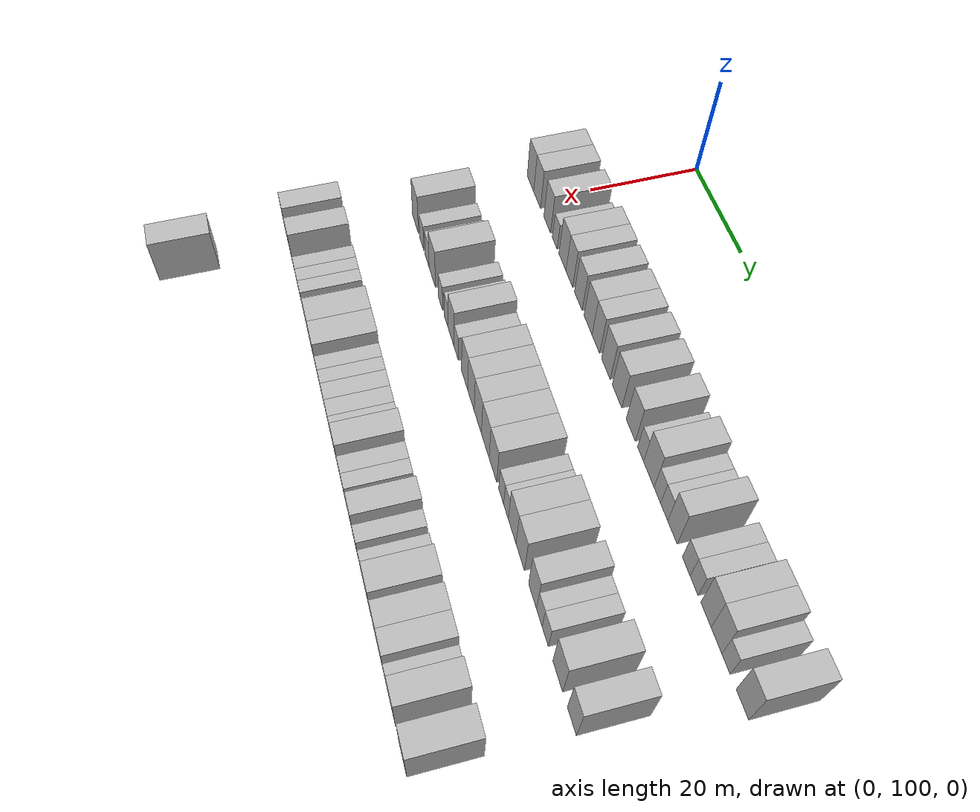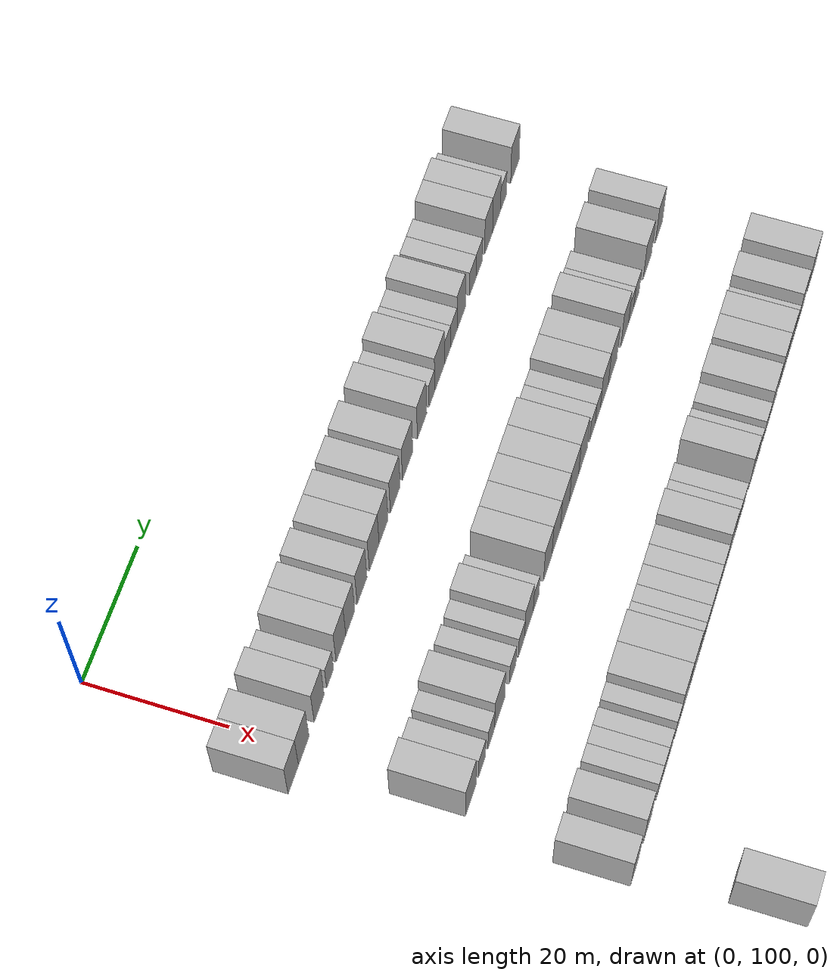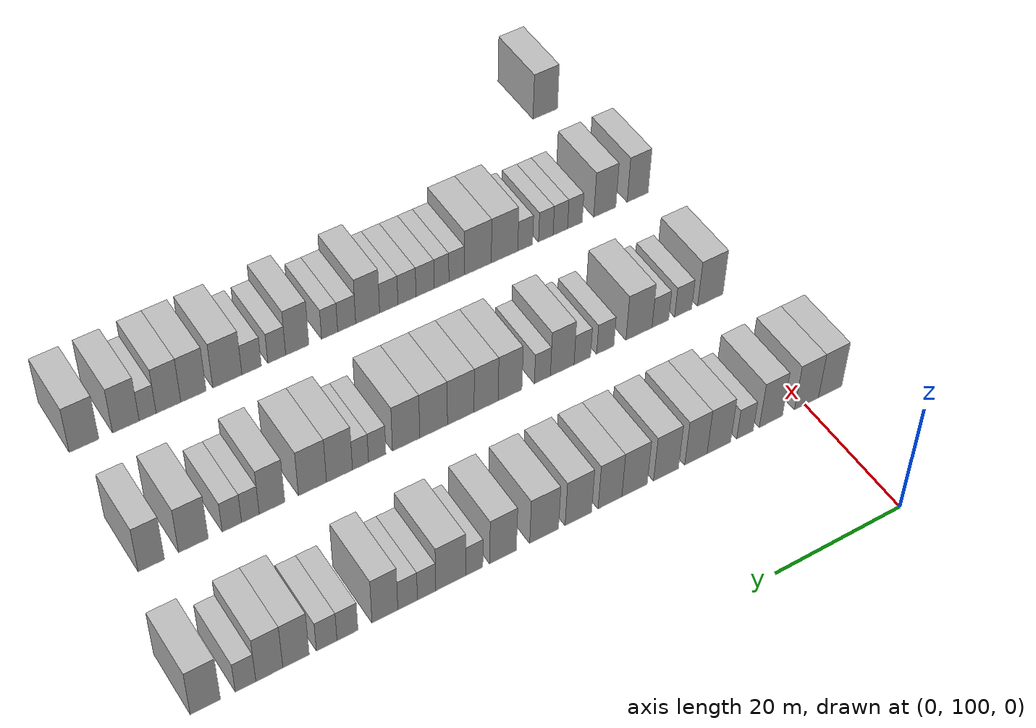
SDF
<sdf version="1.6">
 <world name="default">
  <model name="building_119">
   <static>1</static>
   <pose>25.0000 95.8209 0 0.000000 0.000000 0.000000</pose>
   <link name="link">
    <pose>0 0 4.50 0 0 0</pose>
    <collision name="collision"><geometry><box><size>10.0000 3.9460 9.0000</size></box></geometry></collision>
    <visual name="visual">
     <cast_shadows>0</cast_shadows>
     <geometry><box><size>10.0000 3.9460 9.0000</size></box></geometry>
     <material>
      <script>
       <uri>model://HANNAS_wall/materials/scripts</uri>
       <uri>model://HANNAS_wall/materials/textures</uri>
       <name>vrc/HANNAS_wall</name>
      </script>
     </material>
    </visual>
   </link>
  </model>
  <model name="building_120">
   <static>1</static>
   <pose>25.0000 99.8201 0 0.000000 0.000000 0.000000</pose>
   <link name="link">
    <pose>0 0 4.50 0 0 0</pose>
    <collision name="collision"><geometry><box><size>10.0000 4.0524 9.0000</size></box></geometry></collision>
    <visual name="visual">
     <cast_shadows>0</cast_shadows>
     <geometry><box><size>10.0000 4.0524 9.0000</size></box></geometry>
     <material>
      <script>
       <uri>model://HANNAS_wall/materials/scripts</uri>
       <uri>model://HANNAS_wall/materials/textures</uri>
       <name>vrc/HANNAS_wall</name>
      </script>
     </material>
    </visual>
   </link>
  </model>
  <model name="building_121">
   <static>1</static>
   <pose>25.0000 105.7725 0 0.000000 0.000000 0.000000</pose>
   <link name="link">
    <pose>0 0 4.50 0 0 0</pose>
    <collision name="collision"><geometry><box><size>10.0000 3.8525 9.0000</size></box></geometry></collision>
    <visual name="visual">
     <cast_shadows>0</cast_shadows>
     <geometry><box><size>10.0000 3.8525 9.0000</size></box></geometry>
     <material>
      <script>
       <uri>model://HANNAS_wall/materials/scripts</uri>
       <uri>model://HANNAS_wall/materials/textures</uri>
       <name>vrc/HANNAS_wall</name>
      </script>
     </material>
    </visual>
   </link>
  </model>
  <model name="building_122">
   <static>1</static>
   <pose>25.0000 110.0561 0 0.000000 0.000000 0.000000</pose>
   <link name="link">
    <pose>0 0 3.00 0 0 0</pose>
    <collision name="collision"><geometry><box><size>10.0000 2.7146 6.0000</size></box></geometry></collision>
    <visual name="visual">
     <cast_shadows>0</cast_shadows>
     <geometry><box><size>10.0000 2.7146 6.0000</size></box></geometry>
     <material>
      <script>
       <uri>model://HANNAS_wall/materials/scripts</uri>
       <uri>model://HANNAS_wall/materials/textures</uri>
       <name>vrc/HANNAS_wall</name>
      </script>
     </material>
    </visual>
   </link>
  </model>
  <model name="building_123">
   <static>1</static>
   <pose>25.0000 114.3335 0 0.000000 0.000000 0.000000</pose>
   <link name="link">
    <pose>0 0 4.50 0 0 0</pose>
    <collision name="collision"><geometry><box><size>10.0000 3.8403 9.0000</size></box></geometry></collision>
    <visual name="visual">
     <cast_shadows>0</cast_shadows>
     <geometry><box><size>10.0000 3.8403 9.0000</size></box></geometry>
     <material>
      <script>
       <uri>model://HANNAS_wall/materials/scripts</uri>
       <uri>model://HANNAS_wall/materials/textures</uri>
       <name>vrc/HANNAS_wall</name>
      </script>
     </material>
    </visual>
   </link>
  </model>
  <model name="building_124">
   <static>1</static>
   <pose>25.0000 118.0542 0 0.000000 0.000000 0.000000</pose>
   <link name="link">
    <pose>0 0 4.50 0 0 0</pose>
    <collision name="collision"><geometry><box><size>10.0000 3.6010 9.0000</size></box></geometry></collision>
    <visual name="visual">
     <cast_shadows>0</cast_shadows>
     <geometry><box><size>10.0000 3.6010 9.0000</size></box></geometry>
     <material>
      <script>
       <uri>model://HANNAS_wall/materials/scripts</uri>
       <uri>model://HANNAS_wall/materials/textures</uri>
       <name>vrc/HANNAS_wall</name>
      </script>
     </material>
    </visual>
   </link>
  </model>
  <model name="building_125">
   <static>1</static>
   <pose>25.0000 122.8403 0 0.000000 0.000000 0.000000</pose>
   <link name="link">
    <pose>0 0 4.50 0 0 0</pose>
    <collision name="collision"><geometry><box><size>10.0000 3.9712 9.0000</size></box></geometry></collision>
    <visual name="visual">
     <cast_shadows>0</cast_shadows>
     <geometry><box><size>10.0000 3.9712 9.0000</size></box></geometry>
     <material>
      <script>
       <uri>model://HANNAS_wall/materials/scripts</uri>
       <uri>model://HANNAS_wall/materials/textures</uri>
       <name>vrc/HANNAS_wall</name>
      </script>
     </material>
    </visual>
   </link>
  </model>
  <model name="building_126">
   <static>1</static>
   <pose>25.0000 127.8249 0 0.000000 0.000000 0.000000</pose>
   <link name="link">
    <pose>0 0 4.50 0 0 0</pose>
    <collision name="collision"><geometry><box><size>10.0000 3.9979 9.0000</size></box></geometry></collision>
    <visual name="visual">
     <cast_shadows>0</cast_shadows>
     <geometry><box><size>10.0000 3.9979 9.0000</size></box></geometry>
     <material>
      <script>
       <uri>model://HANNAS_wall/materials/scripts</uri>
       <uri>model://HANNAS_wall/materials/textures</uri>
       <name>vrc/HANNAS_wall</name>
      </script>
     </material>
    </visual>
   </link>
  </model>
  <model name="building_127">
   <static>1</static>
   <pose>25.0000 131.6779 0 0.000000 0.000000 0.000000</pose>
   <link name="link">
    <pose>0 0 4.50 0 0 0</pose>
    <collision name="collision"><geometry><box><size>10.0000 3.7081 9.0000</size></box></geometry></collision>
    <visual name="visual">
     <cast_shadows>0</cast_shadows>
     <geometry><box><size>10.0000 3.7081 9.0000</size></box></geometry>
     <material>
      <script>
       <uri>model://HANNAS_wall/materials/scripts</uri>
       <uri>model://HANNAS_wall/materials/textures</uri>
       <name>vrc/HANNAS_wall</name>
      </script>
     </material>
    </visual>
   </link>
  </model>
  <model name="building_128">
   <static>1</static>
   <pose>25.0000 136.5769 0 0.000000 0.000000 0.000000</pose>
   <link name="link">
    <pose>0 0 4.50 0 0 0</pose>
    <collision name="collision"><geometry><box><size>10.0000 4.0900 9.0000</size></box></geometry></collision>
    <visual name="visual">
     <cast_shadows>0</cast_shadows>
     <geometry><box><size>10.0000 4.0900 9.0000</size></box></geometry>
     <material>
      <script>
       <uri>model://HANNAS_wall/materials/scripts</uri>
       <uri>model://HANNAS_wall/materials/textures</uri>
       <name>vrc/HANNAS_wall</name>
      </script>
     </material>
    </visual>
   </link>
  </model>
  <model name="building_129">
   <static>1</static>
   <pose>25.0000 141.8171 0 0.000000 0.000000 0.000000</pose>
   <link name="link">
    <pose>0 0 4.50 0 0 0</pose>
    <collision name="collision"><geometry><box><size>10.0000 4.3904 9.0000</size></box></geometry></collision>
    <visual name="visual">
     <cast_shadows>0</cast_shadows>
     <geometry><box><size>10.0000 4.3904 9.0000</size></box></geometry>
     <material>
      <script>
       <uri>model://HANNAS_wall/materials/scripts</uri>
       <uri>model://HANNAS_wall/materials/textures</uri>
       <name>vrc/HANNAS_wall</name>
      </script>
     </material>
    </visual>
   </link>
  </model>
  <model name="building_130">
   <static>1</static>
   <pose>25.0000 148.0260 0 0.000000 0.000000 0.000000</pose>
   <link name="link">
    <pose>0 0 4.50 0 0 0</pose>
    <collision name="collision"><geometry><box><size>10.0000 4.0274 9.0000</size></box></geometry></collision>
    <visual name="visual">
     <cast_shadows>0</cast_shadows>
     <geometry><box><size>10.0000 4.0274 9.0000</size></box></geometry>
     <material>
      <script>
       <uri>model://HANNAS_wall/materials/scripts</uri>
       <uri>model://HANNAS_wall/materials/textures</uri>
       <name>vrc/HANNAS_wall</name>
      </script>
     </material>
    </visual>
   </link>
  </model>
  <model name="building_131">
   <static>1</static>
   <pose>25.0000 152.3215 0 0.000000 0.000000 0.000000</pose>
   <link name="link">
    <pose>0 0 3.00 0 0 0</pose>
    <collision name="collision"><geometry><box><size>10.0000 2.5635 6.0000</size></box></geometry></collision>
    <visual name="visual">
     <cast_shadows>0</cast_shadows>
     <geometry><box><size>10.0000 2.5635 6.0000</size></box></geometry>
     <material>
      <script>
       <uri>model://HANNAS_wall/materials/scripts</uri>
       <uri>model://HANNAS_wall/materials/textures</uri>
       <name>vrc/HANNAS_wall</name>
      </script>
     </material>
    </visual>
   </link>
  </model>
  <model name="building_132">
   <static>1</static>
   <pose>25.0000 155.7969 0 0.000000 0.000000 0.000000</pose>
   <link name="link">
    <pose>0 0 4.50 0 0 0</pose>
    <collision name="collision"><geometry><box><size>10.0000 4.3872 9.0000</size></box></geometry></collision>
    <visual name="visual">
     <cast_shadows>0</cast_shadows>
     <geometry><box><size>10.0000 4.3872 9.0000</size></box></geometry>
     <material>
      <script>
       <uri>model://HANNAS_wall/materials/scripts</uri>
       <uri>model://HANNAS_wall/materials/textures</uri>
       <name>vrc/HANNAS_wall</name>
      </script>
     </material>
    </visual>
   </link>
  </model>
  <model name="building_133">
   <static>1</static>
   <pose>25.0000 159.3208 0 0.000000 0.000000 0.000000</pose>
   <link name="link">
    <pose>0 0 3.00 0 0 0</pose>
    <collision name="collision"><geometry><box><size>10.0000 2.6606 6.0000</size></box></geometry></collision>
    <visual name="visual">
     <cast_shadows>0</cast_shadows>
     <geometry><box><size>10.0000 2.6606 6.0000</size></box></geometry>
     <material>
      <script>
       <uri>model://HANNAS_wall/materials/scripts</uri>
       <uri>model://HANNAS_wall/materials/textures</uri>
       <name>vrc/HANNAS_wall</name>
      </script>
     </material>
    </visual>
   </link>
  </model>
  <model name="building_134">
   <static>1</static>
   <pose>25.0000 162.0659 0 0.000000 0.000000 0.000000</pose>
   <link name="link">
    <pose>0 0 3.00 0 0 0</pose>
    <collision name="collision"><geometry><box><size>10.0000 2.8296 6.0000</size></box></geometry></collision>
    <visual name="visual">
     <cast_shadows>0</cast_shadows>
     <geometry><box><size>10.0000 2.8296 6.0000</size></box></geometry>
     <material>
      <script>
       <uri>model://HANNAS_wall/materials/scripts</uri>
       <uri>model://HANNAS_wall/materials/textures</uri>
       <name>vrc/HANNAS_wall</name>
      </script>
     </material>
    </visual>
   </link>
  </model>
  <model name="building_135">
   <static>1</static>
   <pose>25.0000 165.3316 0 0.000000 0.000000 0.000000</pose>
   <link name="link">
    <pose>0 0 4.50 0 0 0</pose>
    <collision name="collision"><geometry><box><size>10.0000 3.7018 9.0000</size></box></geometry></collision>
    <visual name="visual">
     <cast_shadows>0</cast_shadows>
     <geometry><box><size>10.0000 3.7018 9.0000</size></box></geometry>
     <material>
      <script>
       <uri>model://HANNAS_wall/materials/scripts</uri>
       <uri>model://HANNAS_wall/materials/textures</uri>
       <name>vrc/HANNAS_wall</name>
      </script>
     </material>
    </visual>
   </link>
  </model>
  <model name="building_136">
   <static>1</static>
   <pose>25.0000 170.6596 0 0.000000 0.000000 0.000000</pose>
   <link name="link">
    <pose>0 0 3.00 0 0 0</pose>
    <collision name="collision"><geometry><box><size>10.0000 2.9542 6.0000</size></box></geometry></collision>
    <visual name="visual">
     <cast_shadows>0</cast_shadows>
     <geometry><box><size>10.0000 2.9542 6.0000</size></box></geometry>
     <material>
      <script>
       <uri>model://HANNAS_wall/materials/scripts</uri>
       <uri>model://HANNAS_wall/materials/textures</uri>
       <name>vrc/HANNAS_wall</name>
      </script>
     </material>
    </visual>
   </link>
  </model>
  <model name="building_137">
   <static>1</static>
   <pose>25.0000 173.5848 0 0.000000 0.000000 0.000000</pose>
   <link name="link">
    <pose>0 0 3.00 0 0 0</pose>
    <collision name="collision"><geometry><box><size>10.0000 2.8963 6.0000</size></box></geometry></collision>
    <visual name="visual">
     <cast_shadows>0</cast_shadows>
     <geometry><box><size>10.0000 2.8963 6.0000</size></box></geometry>
     <material>
      <script>
       <uri>model://HANNAS_wall/materials/scripts</uri>
       <uri>model://HANNAS_wall/materials/textures</uri>
       <name>vrc/HANNAS_wall</name>
      </script>
     </material>
    </visual>
   </link>
  </model>
  <model name="building_138">
   <static>1</static>
   <pose>25.0000 177.8630 0 0.000000 0.000000 0.000000</pose>
   <link name="link">
    <pose>0 0 4.50 0 0 0</pose>
    <collision name="collision"><geometry><box><size>10.0000 3.6602 9.0000</size></box></geometry></collision>
    <visual name="visual">
     <cast_shadows>0</cast_shadows>
     <geometry><box><size>10.0000 3.6602 9.0000</size></box></geometry>
     <material>
      <script>
       <uri>model://HANNAS_wall/materials/scripts</uri>
       <uri>model://HANNAS_wall/materials/textures</uri>
       <name>vrc/HANNAS_wall</name>
      </script>
     </material>
    </visual>
   </link>
  </model>
  <model name="building_139">
   <static>1</static>
   <pose>25.0000 181.5513 0 0.000000 0.000000 0.000000</pose>
   <link name="link">
    <pose>0 0 4.50 0 0 0</pose>
    <collision name="collision"><geometry><box><size>10.0000 3.7163 9.0000</size></box></geometry></collision>
    <visual name="visual">
     <cast_shadows>0</cast_shadows>
     <geometry><box><size>10.0000 3.7163 9.0000</size></box></geometry>
     <material>
      <script>
       <uri>model://HANNAS_wall/materials/scripts</uri>
       <uri>model://HANNAS_wall/materials/textures</uri>
       <name>vrc/HANNAS_wall</name>
      </script>
     </material>
    </visual>
   </link>
  </model>
  <model name="building_140">
   <static>1</static>
   <pose>25.0000 184.8171 0 0.000000 0.000000 0.000000</pose>
   <link name="link">
    <pose>0 0 3.00 0 0 0</pose>
    <collision name="collision"><geometry><box><size>10.0000 2.8155 6.0000</size></box></geometry></collision>
    <visual name="visual">
     <cast_shadows>0</cast_shadows>
     <geometry><box><size>10.0000 2.8155 6.0000</size></box></geometry>
     <material>
      <script>
       <uri>model://HANNAS_wall/materials/scripts</uri>
       <uri>model://HANNAS_wall/materials/textures</uri>
       <name>vrc/HANNAS_wall</name>
      </script>
     </material>
    </visual>
   </link>
  </model>
  <model name="building_141">
   <static>1</static>
   <pose>25.0000 190.2574 0 0.000000 0.000000 0.000000</pose>
   <link name="link">
    <pose>0 0 4.50 0 0 0</pose>
    <collision name="collision"><geometry><box><size>10.0000 4.0650 9.0000</size></box></geometry></collision>
    <visual name="visual">
     <cast_shadows>0</cast_shadows>
     <geometry><box><size>10.0000 4.0650 9.0000</size></box></geometry>
     <material>
      <script>
       <uri>model://HANNAS_wall/materials/scripts</uri>
       <uri>model://HANNAS_wall/materials/textures</uri>
       <name>vrc/HANNAS_wall</name>
      </script>
     </material>
    </visual>
   </link>
  </model>
  <model name="building_308">
   <static>1</static>
   <pose>47.0000 99.9308 0 0.000000 0.000000 0.000000</pose>
   <link name="link">
    <pose>0 0 4.50 0 0 0</pose>
    <collision name="collision"><geometry><box><size>10.0000 4.3670 9.0000</size></box></geometry></collision>
    <visual name="visual">
     <cast_shadows>0</cast_shadows>
     <geometry><box><size>10.0000 4.3670 9.0000</size></box></geometry>
     <material>
      <script>
       <uri>model://HANNAS_wall/materials/scripts</uri>
       <uri>model://HANNAS_wall/materials/textures</uri>
       <name>vrc/HANNAS_wall</name>
      </script>
     </material>
    </visual>
   </link>
  </model>
  <model name="building_309">
   <static>1</static>
   <pose>47.0000 104.5731 0 0.000000 0.000000 0.000000</pose>
   <link name="link">
    <pose>0 0 3.00 0 0 0</pose>
    <collision name="collision"><geometry><box><size>10.0000 2.9175 6.0000</size></box></geometry></collision>
    <visual name="visual">
     <cast_shadows>0</cast_shadows>
     <geometry><box><size>10.0000 2.9175 6.0000</size></box></geometry>
     <material>
      <script>
       <uri>model://HANNAS_wall/materials/scripts</uri>
       <uri>model://HANNAS_wall/materials/textures</uri>
       <name>vrc/HANNAS_wall</name>
      </script>
     </material>
    </visual>
   </link>
  </model>
  <model name="building_310">
   <static>1</static>
   <pose>47.0000 108.4414 0 0.000000 0.000000 0.000000</pose>
   <link name="link">
    <pose>0 0 3.00 0 0 0</pose>
    <collision name="collision"><geometry><box><size>10.0000 2.8191 6.0000</size></box></geometry></collision>
    <visual name="visual">
     <cast_shadows>0</cast_shadows>
     <geometry><box><size>10.0000 2.8191 6.0000</size></box></geometry>
     <material>
      <script>
       <uri>model://HANNAS_wall/materials/scripts</uri>
       <uri>model://HANNAS_wall/materials/textures</uri>
       <name>vrc/HANNAS_wall</name>
      </script>
     </material>
    </visual>
   </link>
  </model>
  <model name="building_311">
   <static>1</static>
   <pose>47.0000 112.0384 0 0.000000 0.000000 0.000000</pose>
   <link name="link">
    <pose>0 0 4.50 0 0 0</pose>
    <collision name="collision"><geometry><box><size>10.0000 4.3747 9.0000</size></box></geometry></collision>
    <visual name="visual">
     <cast_shadows>0</cast_shadows>
     <geometry><box><size>10.0000 4.3747 9.0000</size></box></geometry>
     <material>
      <script>
       <uri>model://HANNAS_wall/materials/scripts</uri>
       <uri>model://HANNAS_wall/materials/textures</uri>
       <name>vrc/HANNAS_wall</name>
      </script>
     </material>
    </visual>
   </link>
  </model>
  <model name="building_312">
   <static>1</static>
   <pose>47.0000 117.6560 0 0.000000 0.000000 0.000000</pose>
   <link name="link">
    <pose>0 0 3.00 0 0 0</pose>
    <collision name="collision"><geometry><box><size>10.0000 2.8606 6.0000</size></box></geometry></collision>
    <visual name="visual">
     <cast_shadows>0</cast_shadows>
     <geometry><box><size>10.0000 2.8606 6.0000</size></box></geometry>
     <material>
      <script>
       <uri>model://HANNAS_wall/materials/scripts</uri>
       <uri>model://HANNAS_wall/materials/textures</uri>
       <name>vrc/HANNAS_wall</name>
      </script>
     </material>
    </visual>
   </link>
  </model>
  <model name="building_313">
   <static>1</static>
   <pose>47.0000 121.4401 0 0.000000 0.000000 0.000000</pose>
   <link name="link">
    <pose>0 0 3.00 0 0 0</pose>
    <collision name="collision"><geometry><box><size>10.0000 2.7076 6.0000</size></box></geometry></collision>
    <visual name="visual">
     <cast_shadows>0</cast_shadows>
     <geometry><box><size>10.0000 2.7076 6.0000</size></box></geometry>
     <material>
      <script>
       <uri>model://HANNAS_wall/materials/scripts</uri>
       <uri>model://HANNAS_wall/materials/textures</uri>
       <name>vrc/HANNAS_wall</name>
      </script>
     </material>
    </visual>
   </link>
  </model>
  <model name="building_314">
   <static>1</static>
   <pose>47.0000 124.7178 0 0.000000 0.000000 0.000000</pose>
   <link name="link">
    <pose>0 0 4.50 0 0 0</pose>
    <collision name="collision"><geometry><box><size>10.0000 3.8477 9.0000</size></box></geometry></collision>
    <visual name="visual">
     <cast_shadows>0</cast_shadows>
     <geometry><box><size>10.0000 3.8477 9.0000</size></box></geometry>
     <material>
      <script>
       <uri>model://HANNAS_wall/materials/scripts</uri>
       <uri>model://HANNAS_wall/materials/textures</uri>
       <name>vrc/HANNAS_wall</name>
      </script>
     </material>
    </visual>
   </link>
  </model>
  <model name="building_315">
   <static>1</static>
   <pose>47.0000 127.9359 0 0.000000 0.000000 0.000000</pose>
   <link name="link">
    <pose>0 0 3.00 0 0 0</pose>
    <collision name="collision"><geometry><box><size>10.0000 2.5884 6.0000</size></box></geometry></collision>
    <visual name="visual">
     <cast_shadows>0</cast_shadows>
     <geometry><box><size>10.0000 2.5884 6.0000</size></box></geometry>
     <material>
      <script>
       <uri>model://HANNAS_wall/materials/scripts</uri>
       <uri>model://HANNAS_wall/materials/textures</uri>
       <name>vrc/HANNAS_wall</name>
      </script>
     </material>
    </visual>
   </link>
  </model>
  <model name="building_316">
   <static>1</static>
   <pose>47.0000 133.1287 0 0.000000 0.000000 0.000000</pose>
   <link name="link">
    <pose>0 0 4.50 0 0 0</pose>
    <collision name="collision"><geometry><box><size>10.0000 3.7973 9.0000</size></box></geometry></collision>
    <visual name="visual">
     <cast_shadows>0</cast_shadows>
     <geometry><box><size>10.0000 3.7973 9.0000</size></box></geometry>
     <material>
      <script>
       <uri>model://HANNAS_wall/materials/scripts</uri>
       <uri>model://HANNAS_wall/materials/textures</uri>
       <name>vrc/HANNAS_wall</name>
      </script>
     </material>
    </visual>
   </link>
  </model>
  <model name="building_317">
   <static>1</static>
   <pose>47.0000 136.9298 0 0.000000 0.000000 0.000000</pose>
   <link name="link">
    <pose>0 0 4.50 0 0 0</pose>
    <collision name="collision"><geometry><box><size>10.0000 3.8047 9.0000</size></box></geometry></collision>
    <visual name="visual">
     <cast_shadows>0</cast_shadows>
     <geometry><box><size>10.0000 3.8047 9.0000</size></box></geometry>
     <material>
      <script>
       <uri>model://HANNAS_wall/materials/scripts</uri>
       <uri>model://HANNAS_wall/materials/textures</uri>
       <name>vrc/HANNAS_wall</name>
      </script>
     </material>
    </visual>
   </link>
  </model>
  <model name="building_318">
   <static>1</static>
   <pose>47.0000 140.9140 0 0.000000 0.000000 0.000000</pose>
   <link name="link">
    <pose>0 0 4.50 0 0 0</pose>
    <collision name="collision"><geometry><box><size>10.0000 4.1637 9.0000</size></box></geometry></collision>
    <visual name="visual">
     <cast_shadows>0</cast_shadows>
     <geometry><box><size>10.0000 4.1637 9.0000</size></box></geometry>
     <material>
      <script>
       <uri>model://HANNAS_wall/materials/scripts</uri>
       <uri>model://HANNAS_wall/materials/textures</uri>
       <name>vrc/HANNAS_wall</name>
      </script>
     </material>
    </visual>
   </link>
  </model>
  <model name="building_319">
   <static>1</static>
   <pose>47.0000 145.1459 0 0.000000 0.000000 0.000000</pose>
   <link name="link">
    <pose>0 0 4.50 0 0 0</pose>
    <collision name="collision"><geometry><box><size>10.0000 4.3001 9.0000</size></box></geometry></collision>
    <visual name="visual">
     <cast_shadows>0</cast_shadows>
     <geometry><box><size>10.0000 4.3001 9.0000</size></box></geometry>
     <material>
      <script>
       <uri>model://HANNAS_wall/materials/scripts</uri>
       <uri>model://HANNAS_wall/materials/textures</uri>
       <name>vrc/HANNAS_wall</name>
      </script>
     </material>
    </visual>
   </link>
  </model>
  <model name="building_320">
   <static>1</static>
   <pose>47.0000 149.3902 0 0.000000 0.000000 0.000000</pose>
   <link name="link">
    <pose>0 0 4.50 0 0 0</pose>
    <collision name="collision"><geometry><box><size>10.0000 4.1885 9.0000</size></box></geometry></collision>
    <visual name="visual">
     <cast_shadows>0</cast_shadows>
     <geometry><box><size>10.0000 4.1885 9.0000</size></box></geometry>
     <material>
      <script>
       <uri>model://HANNAS_wall/materials/scripts</uri>
       <uri>model://HANNAS_wall/materials/textures</uri>
       <name>vrc/HANNAS_wall</name>
      </script>
     </material>
    </visual>
   </link>
  </model>
  <model name="building_321">
   <static>1</static>
   <pose>47.0000 153.7993 0 0.000000 0.000000 0.000000</pose>
   <link name="link">
    <pose>0 0 3.00 0 0 0</pose>
    <collision name="collision"><geometry><box><size>10.0000 2.6298 6.0000</size></box></geometry></collision>
    <visual name="visual">
     <cast_shadows>0</cast_shadows>
     <geometry><box><size>10.0000 2.6298 6.0000</size></box></geometry>
     <material>
      <script>
       <uri>model://HANNAS_wall/materials/scripts</uri>
       <uri>model://HANNAS_wall/materials/textures</uri>
       <name>vrc/HANNAS_wall</name>
      </script>
     </material>
    </visual>
   </link>
  </model>
  <model name="building_322">
   <static>1</static>
   <pose>47.0000 156.3300 0 0.000000 0.000000 0.000000</pose>
   <link name="link">
    <pose>0 0 3.00 0 0 0</pose>
    <collision name="collision"><geometry><box><size>10.0000 2.4316 6.0000</size></box></geometry></collision>
    <visual name="visual">
     <cast_shadows>0</cast_shadows>
     <geometry><box><size>10.0000 2.4316 6.0000</size></box></geometry>
     <material>
      <script>
       <uri>model://HANNAS_wall/materials/scripts</uri>
       <uri>model://HANNAS_wall/materials/textures</uri>
       <name>vrc/HANNAS_wall</name>
      </script>
     </material>
    </visual>
   </link>
  </model>
  <model name="building_323">
   <static>1</static>
   <pose>47.0000 159.4871 0 0.000000 0.000000 0.000000</pose>
   <link name="link">
    <pose>0 0 4.50 0 0 0</pose>
    <collision name="collision"><geometry><box><size>10.0000 3.8825 9.0000</size></box></geometry></collision>
    <visual name="visual">
     <cast_shadows>0</cast_shadows>
     <geometry><box><size>10.0000 3.8825 9.0000</size></box></geometry>
     <material>
      <script>
       <uri>model://HANNAS_wall/materials/scripts</uri>
       <uri>model://HANNAS_wall/materials/textures</uri>
       <name>vrc/HANNAS_wall</name>
      </script>
     </material>
    </visual>
   </link>
  </model>
  <model name="building_324">
   <static>1</static>
   <pose>47.0000 163.5132 0 0.000000 0.000000 0.000000</pose>
   <link name="link">
    <pose>0 0 4.50 0 0 0</pose>
    <collision name="collision"><geometry><box><size>10.0000 4.1697 9.0000</size></box></geometry></collision>
    <visual name="visual">
     <cast_shadows>0</cast_shadows>
     <geometry><box><size>10.0000 4.1697 9.0000</size></box></geometry>
     <material>
      <script>
       <uri>model://HANNAS_wall/materials/scripts</uri>
       <uri>model://HANNAS_wall/materials/textures</uri>
       <name>vrc/HANNAS_wall</name>
      </script>
     </material>
    </visual>
   </link>
  </model>
  <model name="building_325">
   <static>1</static>
   <pose>47.0000 169.4670 0 0.000000 0.000000 0.000000</pose>
   <link name="link">
    <pose>0 0 4.50 0 0 0</pose>
    <collision name="collision"><geometry><box><size>10.0000 3.7380 9.0000</size></box></geometry></collision>
    <visual name="visual">
     <cast_shadows>0</cast_shadows>
     <geometry><box><size>10.0000 3.7380 9.0000</size></box></geometry>
     <material>
      <script>
       <uri>model://HANNAS_wall/materials/scripts</uri>
       <uri>model://HANNAS_wall/materials/textures</uri>
       <name>vrc/HANNAS_wall</name>
      </script>
     </material>
    </visual>
   </link>
  </model>
  <model name="building_326">
   <static>1</static>
   <pose>47.0000 172.6179 0 0.000000 0.000000 0.000000</pose>
   <link name="link">
    <pose>0 0 3.00 0 0 0</pose>
    <collision name="collision"><geometry><box><size>10.0000 2.5639 6.0000</size></box></geometry></collision>
    <visual name="visual">
     <cast_shadows>0</cast_shadows>
     <geometry><box><size>10.0000 2.5639 6.0000</size></box></geometry>
     <material>
      <script>
       <uri>model://HANNAS_wall/materials/scripts</uri>
       <uri>model://HANNAS_wall/materials/textures</uri>
       <name>vrc/HANNAS_wall</name>
      </script>
     </material>
    </visual>
   </link>
  </model>
  <model name="building_327">
   <static>1</static>
   <pose>47.0000 175.2977 0 0.000000 0.000000 0.000000</pose>
   <link name="link">
    <pose>0 0 3.00 0 0 0</pose>
    <collision name="collision"><geometry><box><size>10.0000 2.7956 6.0000</size></box></geometry></collision>
    <visual name="visual">
     <cast_shadows>0</cast_shadows>
     <geometry><box><size>10.0000 2.7956 6.0000</size></box></geometry>
     <material>
      <script>
       <uri>model://HANNAS_wall/materials/scripts</uri>
       <uri>model://HANNAS_wall/materials/textures</uri>
       <name>vrc/HANNAS_wall</name>
      </script>
     </material>
    </visual>
   </link>
  </model>
  <model name="building_328">
   <static>1</static>
   <pose>47.0000 180.8046 0 0.000000 0.000000 0.000000</pose>
   <link name="link">
    <pose>0 0 4.50 0 0 0</pose>
    <collision name="collision"><geometry><box><size>10.0000 4.2183 9.0000</size></box></geometry></collision>
    <visual name="visual">
     <cast_shadows>0</cast_shadows>
     <geometry><box><size>10.0000 4.2183 9.0000</size></box></geometry>
     <material>
      <script>
       <uri>model://HANNAS_wall/materials/scripts</uri>
       <uri>model://HANNAS_wall/materials/textures</uri>
       <name>vrc/HANNAS_wall</name>
      </script>
     </material>
    </visual>
   </link>
  </model>
  <model name="building_329">
   <static>1</static>
   <pose>47.0000 186.7583 0 0.000000 0.000000 0.000000</pose>
   <link name="link">
    <pose>0 0 4.50 0 0 0</pose>
    <collision name="collision"><geometry><box><size>10.0000 3.6890 9.0000</size></box></geometry></collision>
    <visual name="visual">
     <cast_shadows>0</cast_shadows>
     <geometry><box><size>10.0000 3.6890 9.0000</size></box></geometry>
     <material>
      <script>
       <uri>model://HANNAS_wall/materials/scripts</uri>
       <uri>model://HANNAS_wall/materials/textures</uri>
       <name>vrc/HANNAS_wall</name>
      </script>
     </material>
    </visual>
   </link>
  </model>
  <model name="building_491">
   <static>1</static>
   <pose>69.0000 97.1934 0 0.000000 0.000000 0.000000</pose>
   <link name="link">
    <pose>0 0 4.50 0 0 0</pose>
    <collision name="collision"><geometry><box><size>10.0000 3.7094 9.0000</size></box></geometry></collision>
    <visual name="visual">
     <cast_shadows>0</cast_shadows>
     <geometry><box><size>10.0000 3.7094 9.0000</size></box></geometry>
     <material>
      <script>
       <uri>model://HANNAS_wall/materials/scripts</uri>
       <uri>model://HANNAS_wall/materials/textures</uri>
       <name>vrc/HANNAS_wall</name>
      </script>
     </material>
    </visual>
   </link>
  </model>
  <model name="building_492">
   <static>1</static>
   <pose>69.0000 102.9825 0 0.000000 0.000000 0.000000</pose>
   <link name="link">
    <pose>0 0 4.50 0 0 0</pose>
    <collision name="collision"><geometry><box><size>10.0000 3.8688 9.0000</size></box></geometry></collision>
    <visual name="visual">
     <cast_shadows>0</cast_shadows>
     <geometry><box><size>10.0000 3.8688 9.0000</size></box></geometry>
     <material>
      <script>
       <uri>model://HANNAS_wall/materials/scripts</uri>
       <uri>model://HANNAS_wall/materials/textures</uri>
       <name>vrc/HANNAS_wall</name>
      </script>
     </material>
    </visual>
   </link>
  </model>
  <model name="building_493">
   <static>1</static>
   <pose>69.0000 108.1914 0 0.000000 0.000000 0.000000</pose>
   <link name="link">
    <pose>0 0 3.00 0 0 0</pose>
    <collision name="collision"><geometry><box><size>10.0000 2.5491 6.0000</size></box></geometry></collision>
    <visual name="visual">
     <cast_shadows>0</cast_shadows>
     <geometry><box><size>10.0000 2.5491 6.0000</size></box></geometry>
     <material>
      <script>
       <uri>model://HANNAS_wall/materials/scripts</uri>
       <uri>model://HANNAS_wall/materials/textures</uri>
       <name>vrc/HANNAS_wall</name>
      </script>
     </material>
    </visual>
   </link>
  </model>
  <model name="building_494">
   <static>1</static>
   <pose>69.0000 110.7102 0 0.000000 0.000000 0.000000</pose>
   <link name="link">
    <pose>0 0 3.00 0 0 0</pose>
    <collision name="collision"><geometry><box><size>10.0000 2.4885 6.0000</size></box></geometry></collision>
    <visual name="visual">
     <cast_shadows>0</cast_shadows>
     <geometry><box><size>10.0000 2.4885 6.0000</size></box></geometry>
     <material>
      <script>
       <uri>model://HANNAS_wall/materials/scripts</uri>
       <uri>model://HANNAS_wall/materials/textures</uri>
       <name>vrc/HANNAS_wall</name>
      </script>
     </material>
    </visual>
   </link>
  </model>
  <model name="building_495">
   <static>1</static>
   <pose>69.0000 113.2034 0 0.000000 0.000000 0.000000</pose>
   <link name="link">
    <pose>0 0 3.00 0 0 0</pose>
    <collision name="collision"><geometry><box><size>10.0000 2.4980 6.0000</size></box></geometry></collision>
    <visual name="visual">
     <cast_shadows>0</cast_shadows>
     <geometry><box><size>10.0000 2.4980 6.0000</size></box></geometry>
     <material>
      <script>
       <uri>model://HANNAS_wall/materials/scripts</uri>
       <uri>model://HANNAS_wall/materials/textures</uri>
       <name>vrc/HANNAS_wall</name>
      </script>
     </material>
    </visual>
   </link>
  </model>
  <model name="building_496">
   <static>1</static>
   <pose>69.0000 116.7166 0 0.000000 0.000000 0.000000</pose>
   <link name="link">
    <pose>0 0 3.00 0 0 0</pose>
    <collision name="collision"><geometry><box><size>10.0000 2.5283 6.0000</size></box></geometry></collision>
    <visual name="visual">
     <cast_shadows>0</cast_shadows>
     <geometry><box><size>10.0000 2.5283 6.0000</size></box></geometry>
     <material>
      <script>
       <uri>model://HANNAS_wall/materials/scripts</uri>
       <uri>model://HANNAS_wall/materials/textures</uri>
       <name>vrc/HANNAS_wall</name>
      </script>
     </material>
    </visual>
   </link>
  </model>
  <model name="building_497">
   <static>1</static>
   <pose>69.0000 120.2131 0 0.000000 0.000000 0.000000</pose>
   <link name="link">
    <pose>0 0 4.50 0 0 0</pose>
    <collision name="collision"><geometry><box><size>10.0000 4.4648 9.0000</size></box></geometry></collision>
    <visual name="visual">
     <cast_shadows>0</cast_shadows>
     <geometry><box><size>10.0000 4.4648 9.0000</size></box></geometry>
     <material>
      <script>
       <uri>model://HANNAS_wall/materials/scripts</uri>
       <uri>model://HANNAS_wall/materials/textures</uri>
       <name>vrc/HANNAS_wall</name>
      </script>
     </material>
    </visual>
   </link>
  </model>
  <model name="building_498">
   <static>1</static>
   <pose>69.0000 124.6942 0 0.000000 0.000000 0.000000</pose>
   <link name="link">
    <pose>0 0 4.50 0 0 0</pose>
    <collision name="collision"><geometry><box><size>10.0000 4.4975 9.0000</size></box></geometry></collision>
    <visual name="visual">
     <cast_shadows>0</cast_shadows>
     <geometry><box><size>10.0000 4.4975 9.0000</size></box></geometry>
     <material>
      <script>
       <uri>model://HANNAS_wall/materials/scripts</uri>
       <uri>model://HANNAS_wall/materials/textures</uri>
       <name>vrc/HANNAS_wall</name>
      </script>
     </material>
    </visual>
   </link>
  </model>
  <model name="building_499">
   <static>1</static>
   <pose>69.0000 128.2171 0 0.000000 0.000000 0.000000</pose>
   <link name="link">
    <pose>0 0 3.00 0 0 0</pose>
    <collision name="collision"><geometry><box><size>10.0000 2.5483 6.0000</size></box></geometry></collision>
    <visual name="visual">
     <cast_shadows>0</cast_shadows>
     <geometry><box><size>10.0000 2.5483 6.0000</size></box></geometry>
     <material>
      <script>
       <uri>model://HANNAS_wall/materials/scripts</uri>
       <uri>model://HANNAS_wall/materials/textures</uri>
       <name>vrc/HANNAS_wall</name>
      </script>
     </material>
    </visual>
   </link>
  </model>
  <model name="building_500">
   <static>1</static>
   <pose>69.0000 130.7135 0 0.000000 0.000000 0.000000</pose>
   <link name="link">
    <pose>0 0 3.00 0 0 0</pose>
    <collision name="collision"><geometry><box><size>10.0000 2.4446 6.0000</size></box></geometry></collision>
    <visual name="visual">
     <cast_shadows>0</cast_shadows>
     <geometry><box><size>10.0000 2.4446 6.0000</size></box></geometry>
     <material>
      <script>
       <uri>model://HANNAS_wall/materials/scripts</uri>
       <uri>model://HANNAS_wall/materials/textures</uri>
       <name>vrc/HANNAS_wall</name>
      </script>
     </material>
    </visual>
   </link>
  </model>
  <model name="building_501">
   <static>1</static>
   <pose>69.0000 133.4179 0 0.000000 0.000000 0.000000</pose>
   <link name="link">
    <pose>0 0 3.00 0 0 0</pose>
    <collision name="collision"><geometry><box><size>10.0000 2.9642 6.0000</size></box></geometry></collision>
    <visual name="visual">
     <cast_shadows>0</cast_shadows>
     <geometry><box><size>10.0000 2.9642 6.0000</size></box></geometry>
     <material>
      <script>
       <uri>model://HANNAS_wall/materials/scripts</uri>
       <uri>model://HANNAS_wall/materials/textures</uri>
       <name>vrc/HANNAS_wall</name>
      </script>
     </material>
    </visual>
   </link>
  </model>
  <model name="building_502">
   <static>1</static>
   <pose>69.0000 136.3659 0 0.000000 0.000000 0.000000</pose>
   <link name="link">
    <pose>0 0 3.00 0 0 0</pose>
    <collision name="collision"><geometry><box><size>10.0000 2.9319 6.0000</size></box></geometry></collision>
    <visual name="visual">
     <cast_shadows>0</cast_shadows>
     <geometry><box><size>10.0000 2.9319 6.0000</size></box></geometry>
     <material>
      <script>
       <uri>model://HANNAS_wall/materials/scripts</uri>
       <uri>model://HANNAS_wall/materials/textures</uri>
       <name>vrc/HANNAS_wall</name>
      </script>
     </material>
    </visual>
   </link>
  </model>
  <model name="building_503">
   <static>1</static>
   <pose>69.0000 139.3098 0 0.000000 0.000000 0.000000</pose>
   <link name="link">
    <pose>0 0 3.00 0 0 0</pose>
    <collision name="collision"><geometry><box><size>10.0000 2.9560 6.0000</size></box></geometry></collision>
    <visual name="visual">
     <cast_shadows>0</cast_shadows>
     <geometry><box><size>10.0000 2.9560 6.0000</size></box></geometry>
     <material>
      <script>
       <uri>model://HANNAS_wall/materials/scripts</uri>
       <uri>model://HANNAS_wall/materials/textures</uri>
       <name>vrc/HANNAS_wall</name>
      </script>
     </material>
    </visual>
   </link>
  </model>
  <model name="building_504">
   <static>1</static>
   <pose>69.0000 142.7058 0 0.000000 0.000000 0.000000</pose>
   <link name="link">
    <pose>0 0 4.50 0 0 0</pose>
    <collision name="collision"><geometry><box><size>10.0000 3.8360 9.0000</size></box></geometry></collision>
    <visual name="visual">
     <cast_shadows>0</cast_shadows>
     <geometry><box><size>10.0000 3.8360 9.0000</size></box></geometry>
     <material>
      <script>
       <uri>model://HANNAS_wall/materials/scripts</uri>
       <uri>model://HANNAS_wall/materials/textures</uri>
       <name>vrc/HANNAS_wall</name>
      </script>
     </material>
    </visual>
   </link>
  </model>
  <model name="building_505">
   <static>1</static>
   <pose>69.0000 146.0530 0 0.000000 0.000000 0.000000</pose>
   <link name="link">
    <pose>0 0 3.00 0 0 0</pose>
    <collision name="collision"><geometry><box><size>10.0000 2.8583 6.0000</size></box></geometry></collision>
    <visual name="visual">
     <cast_shadows>0</cast_shadows>
     <geometry><box><size>10.0000 2.8583 6.0000</size></box></geometry>
     <material>
      <script>
       <uri>model://HANNAS_wall/materials/scripts</uri>
       <uri>model://HANNAS_wall/materials/textures</uri>
       <name>vrc/HANNAS_wall</name>
      </script>
     </material>
    </visual>
   </link>
  </model>
  <model name="building_506">
   <static>1</static>
   <pose>69.0000 148.7539 0 0.000000 0.000000 0.000000</pose>
   <link name="link">
    <pose>0 0 3.00 0 0 0</pose>
    <collision name="collision"><geometry><box><size>10.0000 2.5435 6.0000</size></box></geometry></collision>
    <visual name="visual">
     <cast_shadows>0</cast_shadows>
     <geometry><box><size>10.0000 2.5435 6.0000</size></box></geometry>
     <material>
      <script>
       <uri>model://HANNAS_wall/materials/scripts</uri>
       <uri>model://HANNAS_wall/materials/textures</uri>
       <name>vrc/HANNAS_wall</name>
      </script>
     </material>
    </visual>
   </link>
  </model>
  <model name="building_507">
   <static>1</static>
   <pose>69.0000 153.8344 0 0.000000 0.000000 0.000000</pose>
   <link name="link">
    <pose>0 0 4.50 0 0 0</pose>
    <collision name="collision"><geometry><box><size>10.0000 3.6177 9.0000</size></box></geometry></collision>
    <visual name="visual">
     <cast_shadows>0</cast_shadows>
     <geometry><box><size>10.0000 3.6177 9.0000</size></box></geometry>
     <material>
      <script>
       <uri>model://HANNAS_wall/materials/scripts</uri>
       <uri>model://HANNAS_wall/materials/textures</uri>
       <name>vrc/HANNAS_wall</name>
      </script>
     </material>
    </visual>
   </link>
  </model>
  <model name="building_508">
   <static>1</static>
   <pose>69.0000 157.0271 0 0.000000 0.000000 0.000000</pose>
   <link name="link">
    <pose>0 0 3.00 0 0 0</pose>
    <collision name="collision"><geometry><box><size>10.0000 2.7676 6.0000</size></box></geometry></collision>
    <visual name="visual">
     <cast_shadows>0</cast_shadows>
     <geometry><box><size>10.0000 2.7676 6.0000</size></box></geometry>
     <material>
      <script>
       <uri>model://HANNAS_wall/materials/scripts</uri>
       <uri>model://HANNAS_wall/materials/textures</uri>
       <name>vrc/HANNAS_wall</name>
      </script>
     </material>
    </visual>
   </link>
  </model>
  <model name="building_509">
   <static>1</static>
   <pose>69.0000 160.9068 0 0.000000 0.000000 0.000000</pose>
   <link name="link">
    <pose>0 0 3.00 0 0 0</pose>
    <collision name="collision"><geometry><box><size>10.0000 2.9918 6.0000</size></box></geometry></collision>
    <visual name="visual">
     <cast_shadows>0</cast_shadows>
     <geometry><box><size>10.0000 2.9918 6.0000</size></box></geometry>
     <material>
      <script>
       <uri>model://HANNAS_wall/materials/scripts</uri>
       <uri>model://HANNAS_wall/materials/textures</uri>
       <name>vrc/HANNAS_wall</name>
      </script>
     </material>
    </visual>
   </link>
  </model>
  <model name="building_510">
   <static>1</static>
   <pose>69.0000 164.6234 0 0.000000 0.000000 0.000000</pose>
   <link name="link">
    <pose>0 0 4.50 0 0 0</pose>
    <collision name="collision"><geometry><box><size>10.0000 4.4414 9.0000</size></box></geometry></collision>
    <visual name="visual">
     <cast_shadows>0</cast_shadows>
     <geometry><box><size>10.0000 4.4414 9.0000</size></box></geometry>
     <material>
      <script>
       <uri>model://HANNAS_wall/materials/scripts</uri>
       <uri>model://HANNAS_wall/materials/textures</uri>
       <name>vrc/HANNAS_wall</name>
      </script>
     </material>
    </visual>
   </link>
  </model>
  <model name="building_511">
   <static>1</static>
   <pose>69.0000 169.7513 0 0.000000 0.000000 0.000000</pose>
   <link name="link">
    <pose>0 0 4.50 0 0 0</pose>
    <collision name="collision"><geometry><box><size>10.0000 3.8145 9.0000</size></box></geometry></collision>
    <visual name="visual">
     <cast_shadows>0</cast_shadows>
     <geometry><box><size>10.0000 3.8145 9.0000</size></box></geometry>
     <material>
      <script>
       <uri>model://HANNAS_wall/materials/scripts</uri>
       <uri>model://HANNAS_wall/materials/textures</uri>
       <name>vrc/HANNAS_wall</name>
      </script>
     </material>
    </visual>
   </link>
  </model>
  <model name="building_512">
   <static>1</static>
   <pose>69.0000 173.4973 0 0.000000 0.000000 0.000000</pose>
   <link name="link">
    <pose>0 0 4.50 0 0 0</pose>
    <collision name="collision"><geometry><box><size>10.0000 3.6776 9.0000</size></box></geometry></collision>
    <visual name="visual">
     <cast_shadows>0</cast_shadows>
     <geometry><box><size>10.0000 3.6776 9.0000</size></box></geometry>
     <material>
      <script>
       <uri>model://HANNAS_wall/materials/scripts</uri>
       <uri>model://HANNAS_wall/materials/textures</uri>
       <name>vrc/HANNAS_wall</name>
      </script>
     </material>
    </visual>
   </link>
  </model>
  <model name="building_513">
   <static>1</static>
   <pose>69.0000 176.5894 0 0.000000 0.000000 0.000000</pose>
   <link name="link">
    <pose>0 0 3.00 0 0 0</pose>
    <collision name="collision"><geometry><box><size>10.0000 2.5065 6.0000</size></box></geometry></collision>
    <visual name="visual">
     <cast_shadows>0</cast_shadows>
     <geometry><box><size>10.0000 2.5065 6.0000</size></box></geometry>
     <material>
      <script>
       <uri>model://HANNAS_wall/materials/scripts</uri>
       <uri>model://HANNAS_wall/materials/textures</uri>
       <name>vrc/HANNAS_wall</name>
      </script>
     </material>
    </visual>
   </link>
  </model>
  <model name="building_514">
   <static>1</static>
   <pose>69.0000 179.8082 0 0.000000 0.000000 0.000000</pose>
   <link name="link">
    <pose>0 0 4.50 0 0 0</pose>
    <collision name="collision"><geometry><box><size>10.0000 3.9311 9.0000</size></box></geometry></collision>
    <visual name="visual">
     <cast_shadows>0</cast_shadows>
     <geometry><box><size>10.0000 3.9311 9.0000</size></box></geometry>
     <material>
      <script>
       <uri>model://HANNAS_wall/materials/scripts</uri>
       <uri>model://HANNAS_wall/materials/textures</uri>
       <name>vrc/HANNAS_wall</name>
      </script>
     </material>
    </visual>
   </link>
  </model>
  <model name="building_515">
   <static>1</static>
   <pose>69.0000 185.9235 0 0.000000 0.000000 0.000000</pose>
   <link name="link">
    <pose>0 0 4.50 0 0 0</pose>
    <collision name="collision"><geometry><box><size>10.0000 4.2995 9.0000</size></box></geometry></collision>
    <visual name="visual">
     <cast_shadows>0</cast_shadows>
     <geometry><box><size>10.0000 4.2995 9.0000</size></box></geometry>
     <material>
      <script>
       <uri>model://HANNAS_wall/materials/scripts</uri>
       <uri>model://HANNAS_wall/materials/textures</uri>
       <name>vrc/HANNAS_wall</name>
      </script>
     </material>
    </visual>
   </link>
  </model>
  <model name="building_677">
   <static>1</static>
   <pose>91.0000 99.1171 0 0.000000 0.000000 0.000000</pose>
   <link name="link">
    <pose>0 0 4.50 0 0 0</pose>
    <collision name="collision"><geometry><box><size>10.0000 4.4136 9.0000</size></box></geometry></collision>
    <visual name="visual">
     <cast_shadows>0</cast_shadows>
     <geometry><box><size>10.0000 4.4136 9.0000</size></box></geometry>
     <material>
      <script>
       <uri>model://HANNAS_wall/materials/scripts</uri>
       <uri>model://HANNAS_wall/materials/textures</uri>
       <name>vrc/HANNAS_wall</name>
      </script>
     </material>
    </visual>
   </link>
  </model>
 </world>
</sdf>
